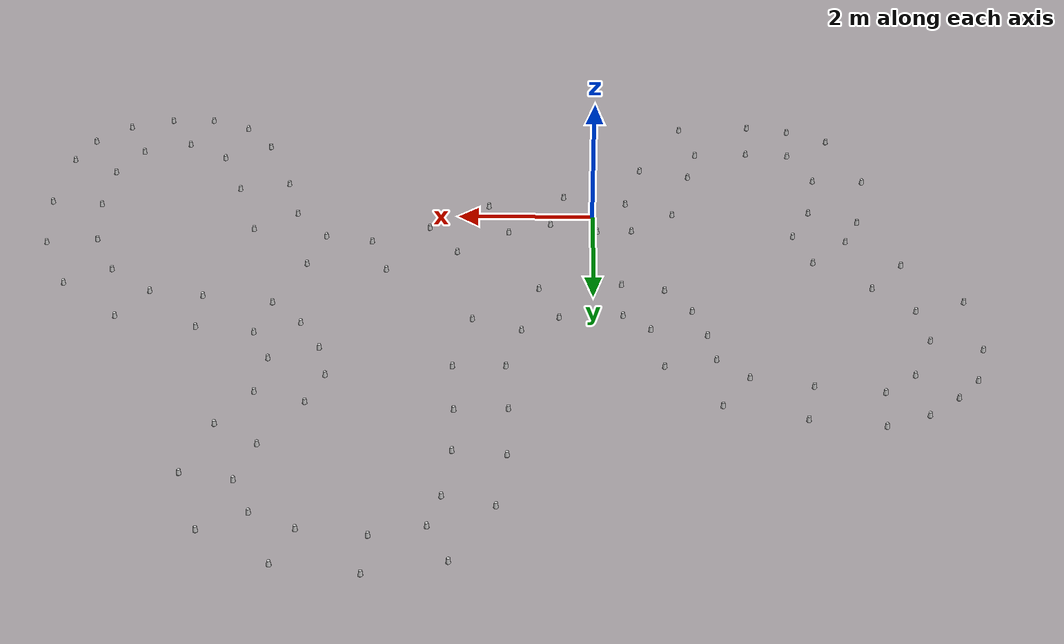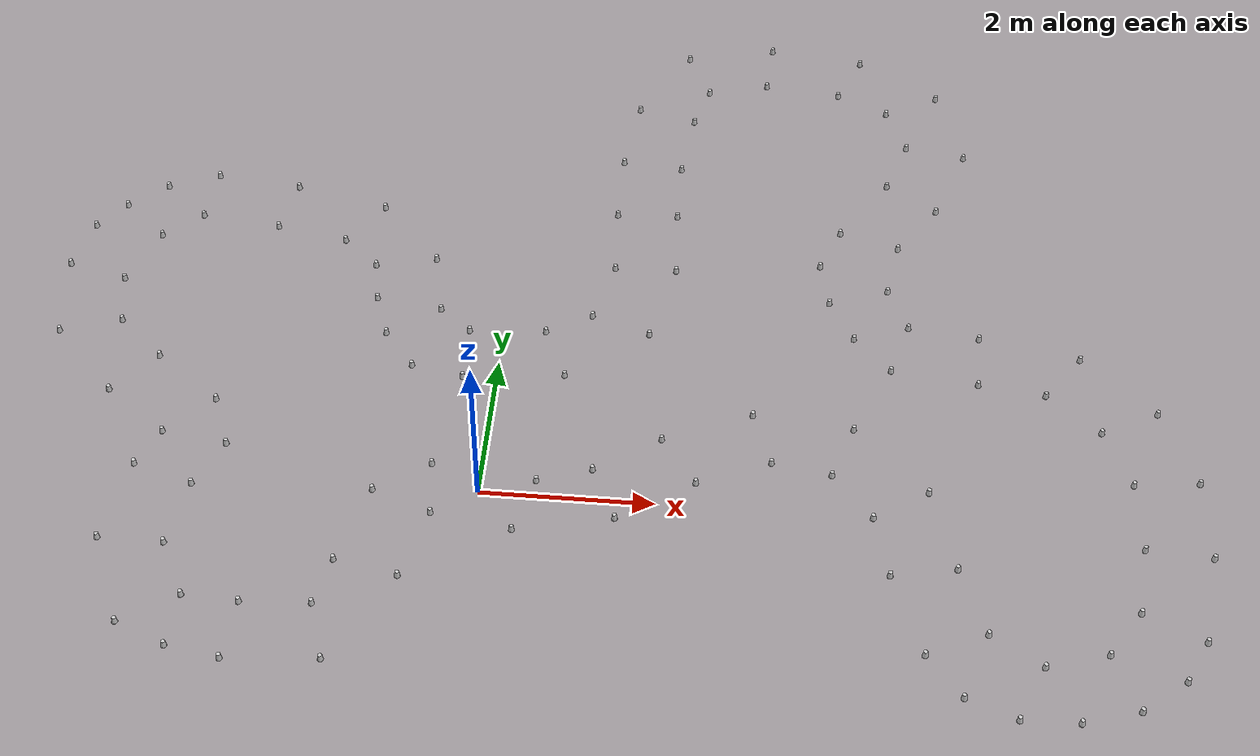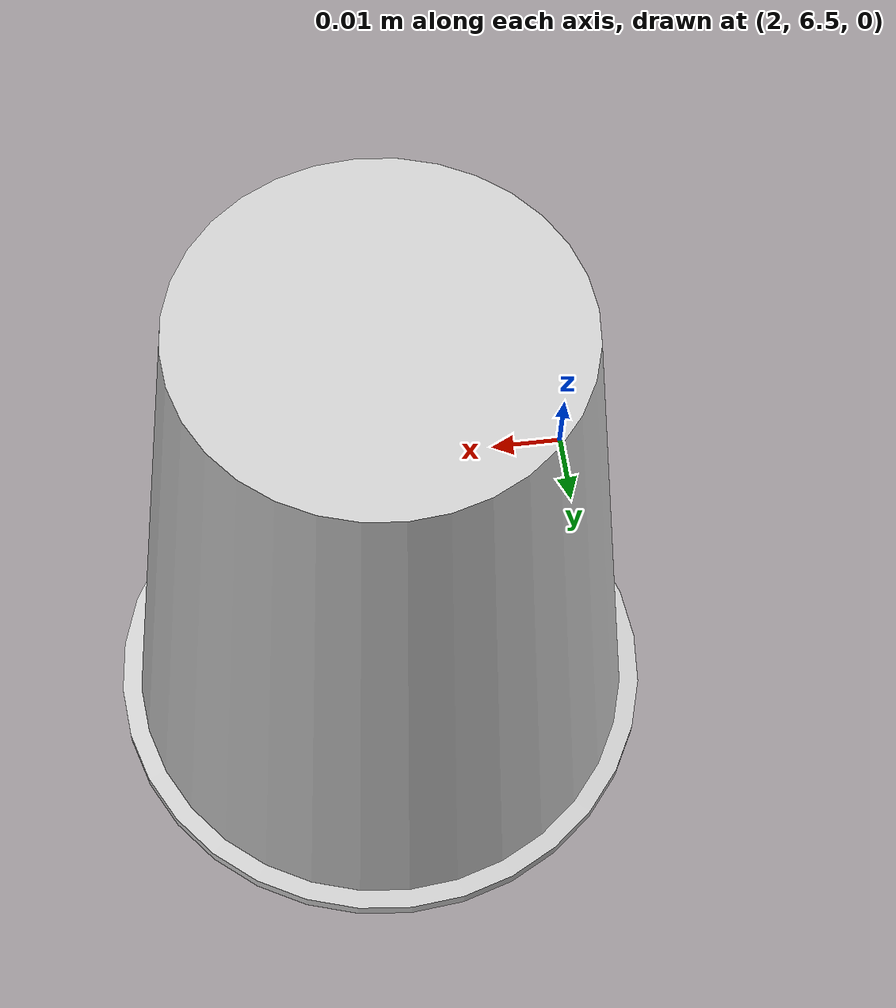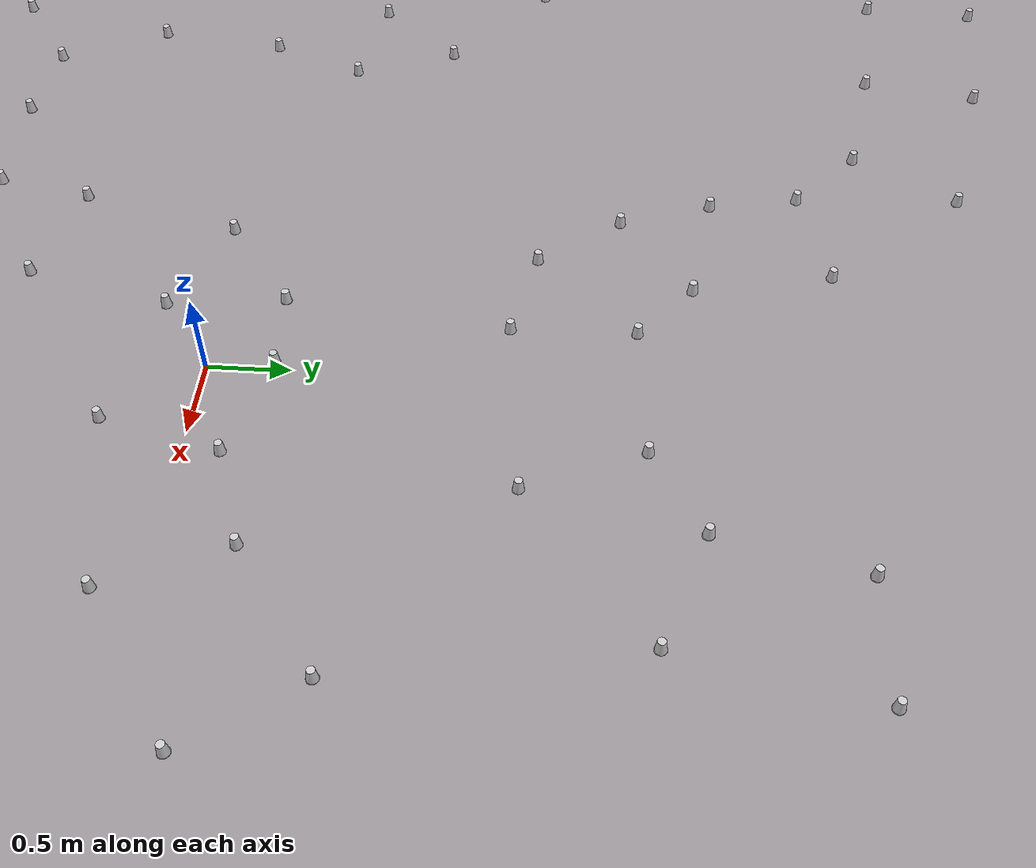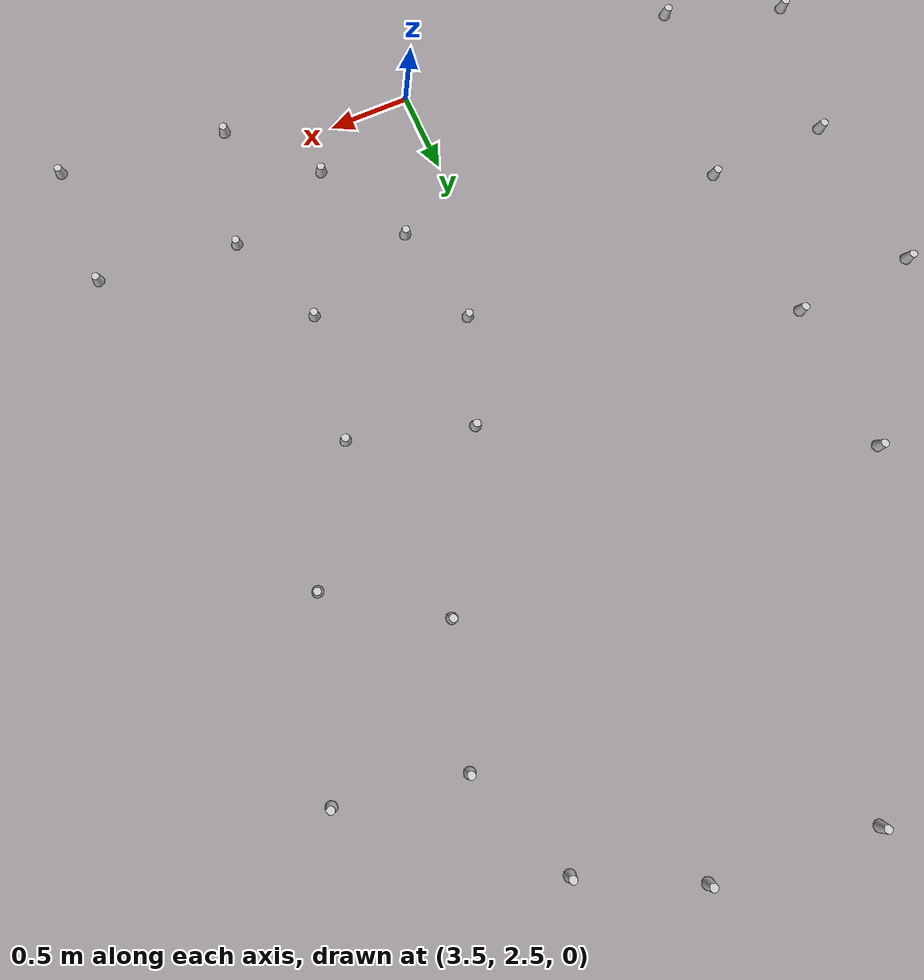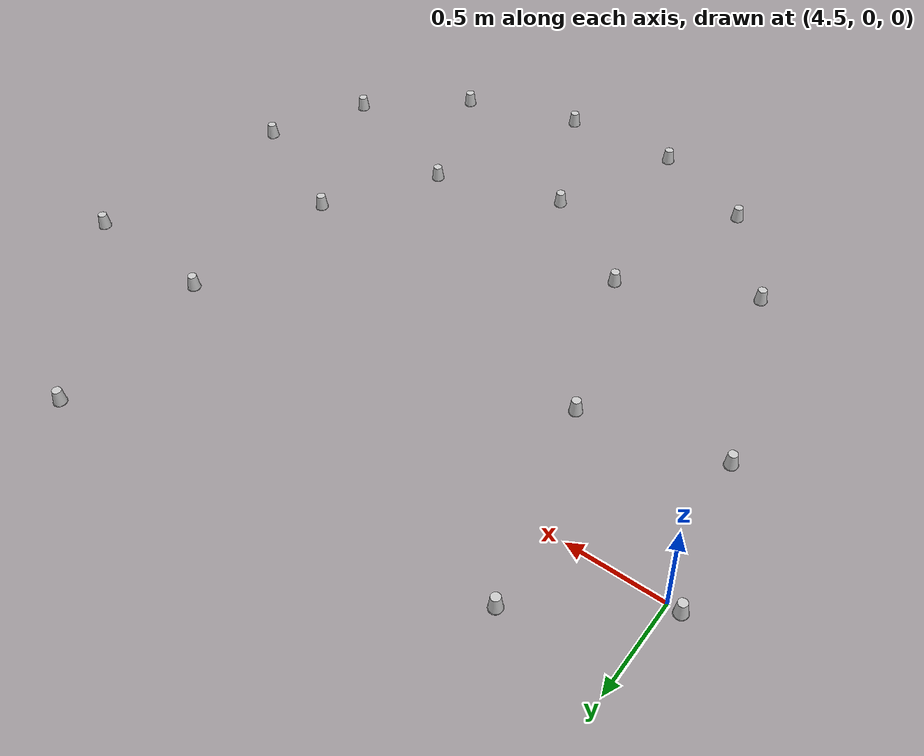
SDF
<?xml version='1.0' encoding='UTF-8'?>
<sdf version="1.4">
  <model name="some track">
    <include>
      <uri>model://cone_yellow</uri>
      <pose>0.44022360225078133 -0.506268748202644 0 0 0 0</pose>
      <name>cone_right_0</name>
    </include>
    <include>
      <uri>model://cone_yellow</uri>
      <pose>1.5638249006412357 -0.24787860087571784 0 0 0 0</pose>
      <name>cone_right_1</name>
    </include>
    <include>
      <uri>model://cone_yellow</uri>
      <pose>2.432876875972533 0.33940764134706214 0 0 0 0</pose>
      <name>cone_right_2</name>
    </include>
    <include>
      <uri>model://cone_yellow</uri>
      <pose>3.2738450334360136 0.7103455340334839 0 0 0 0</pose>
      <name>cone_right_3</name>
    </include>
    <include>
      <uri>model://cone_yellow</uri>
      <pose>3.962163192456555 0.5893240225503815 0 0 0 0</pose>
      <name>cone_right_4</name>
    </include>
    <include>
      <uri>model://cone_yellow</uri>
      <pose>4.434390325784511 0.006780709379471533 0 0 0 0</pose>
      <name>cone_right_5</name>
    </include>
    <include>
      <uri>model://cone_yellow</uri>
      <pose>4.623998057041872 -0.7831051933811569 0 0 0 0</pose>
      <name>cone_right_6</name>
    </include>
    <include>
      <uri>model://cone_yellow</uri>
      <pose>4.9954287138845785 -1.81046904169811 0 0 0 0</pose>
      <name>cone_right_7</name>
    </include>
    <include>
      <uri>model://cone_yellow</uri>
      <pose>5.9608633397634145 -2.546567360918916 0 0 0 0</pose>
      <name>cone_right_8</name>
    </include>
    <include>
      <uri>model://cone_yellow</uri>
      <pose>7.231405791827997 -2.3319774398210185 0 0 0 0</pose>
      <name>cone_right_9</name>
    </include>
    <include>
      <uri>model://cone_yellow</uri>
      <pose>7.987861579705472 -1.3812592368519985 0 0 0 0</pose>
      <name>cone_right_10</name>
    </include>
    <include>
      <uri>model://cone_yellow</uri>
      <pose>8.164930779831423 -0.23812770109658132 0 0 0 0</pose>
      <name>cone_right_11</name>
    </include>
    <include>
      <uri>model://cone_yellow</uri>
      <pose>8.10446732151255 0.8264518806731546 0 0 0 0</pose>
      <name>cone_right_12</name>
    </include>
    <include>
      <uri>model://cone_yellow</uri>
      <pose>7.709126491291107 1.8456443371171358 0 0 0 0</pose>
      <name>cone_right_13</name>
    </include>
    <include>
      <uri>model://cone_yellow</uri>
      <pose>6.857681150757183 2.640413184308524 0 0 0 0</pose>
      <name>cone_right_14</name>
    </include>
    <include>
      <uri>model://cone_yellow</uri>
      <pose>5.672310732669448 2.878166086647049 0 0 0 0</pose>
      <name>cone_right_15</name>
    </include>
    <include>
      <uri>model://cone_yellow</uri>
      <pose>4.830330998092956 2.9877936703514076 0 0 0 0</pose>
      <name>cone_right_16</name>
    </include>
    <include>
      <uri>model://cone_yellow</uri>
      <pose>4.577709678997449 3.589932733546747 0 0 0 0</pose>
      <name>cone_right_17</name>
    </include>
    <include>
      <uri>model://cone_yellow</uri>
      <pose>4.703548267369458 4.352297667450037 0 0 0 0</pose>
      <name>cone_right_18</name>
    </include>
    <include>
      <uri>model://cone_yellow</uri>
      <pose>5.180335067995843 5.073626048158017 0 0 0 0</pose>
      <name>cone_right_19</name>
    </include>
    <include>
      <uri>model://cone_yellow</uri>
      <pose>5.546615119025252 6.126010173656836 0 0 0 0</pose>
      <name>cone_right_20</name>
    </include>
    <include>
      <uri>model://cone_yellow</uri>
      <pose>5.20058670818731 7.280777286199042 0 0 0 0</pose>
      <name>cone_right_21</name>
    </include>
    <include>
      <uri>model://cone_yellow</uri>
      <pose>4.189607968977042 7.92651293234135 0 0 0 0</pose>
      <name>cone_right_22</name>
    </include>
    <include>
      <uri>model://cone_yellow</uri>
      <pose>3.0019878667819917 8.091798913217263 0 0 0 0</pose>
      <name>cone_right_23</name>
    </include>
    <include>
      <uri>model://cone_yellow</uri>
      <pose>1.8901249716676056 7.828387112225913 0 0 0 0</pose>
      <name>cone_right_24</name>
    </include>
    <include>
      <uri>model://cone_yellow</uri>
      <pose>1.3033403300204036 6.717939058053273 0 0 0 0</pose>
      <name>cone_right_25</name>
    </include>
    <include>
      <uri>model://cone_yellow</uri>
      <pose>1.1776930636960374 5.658283814875406 0 0 0 0</pose>
      <name>cone_right_26</name>
    </include>
    <include>
      <uri>model://cone_yellow</uri>
      <pose>1.1800614310643778 4.662023807717361 0 0 0 0</pose>
      <name>cone_right_27</name>
    </include>
    <include>
      <uri>model://cone_yellow</uri>
      <pose>1.230994663643302 3.7018946311634098 0 0 0 0</pose>
      <name>cone_right_28</name>
    </include>
    <include>
      <uri>model://cone_yellow</uri>
      <pose>1.0266395284349543 2.8599570131040757 0 0 0 0</pose>
      <name>cone_right_29</name>
    </include>
    <include>
      <uri>model://cone_yellow</uri>
      <pose>0.49364153150186096 2.547467552979819 0 0 0 0</pose>
      <name>cone_right_30</name>
    </include>
    <include>
      <uri>model://cone_yellow</uri>
      <pose>-0.4218971218835171 2.4827903107448206 0 0 0 0</pose>
      <name>cone_right_31</name>
    </include>
    <include>
      <uri>model://cone_yellow</uri>
      <pose>-0.8141075575688135 2.8128099781926394 0 0 0 0</pose>
      <name>cone_right_32</name>
    </include>
    <include>
      <uri>model://cone_yellow</uri>
      <pose>-0.9906037732024007 3.668037894619511 0 0 0 0</pose>
      <name>cone_right_33</name>
    </include>
    <include>
      <uri>model://cone_yellow</uri>
      <pose>-1.7691628498712177 4.537467176025286 0 0 0 0</pose>
      <name>cone_right_34</name>
    </include>
    <include>
      <uri>model://cone_yellow</uri>
      <pose>-2.928151621371933 4.8195079784098445 0 0 0 0</pose>
      <name>cone_right_35</name>
    </include>
    <include>
      <uri>model://cone_yellow</uri>
      <pose>-3.9827866627626203 4.944188295967893 0 0 0 0</pose>
      <name>cone_right_36</name>
    </include>
    <include>
      <uri>model://cone_yellow</uri>
      <pose>-5.032484312385517 4.29883544817334 0 0 0 0</pose>
      <name>cone_right_37</name>
    </include>
    <include>
      <uri>model://cone_yellow</uri>
      <pose>-5.48700010286994 3.1927664539829683 0 0 0 0</pose>
      <name>cone_right_38</name>
    </include>
    <include>
      <uri>model://cone_yellow</uri>
      <pose>-5.335349967119814 2.0558096908871732 0 0 0 0</pose>
      <name>cone_right_39</name>
    </include>
    <include>
      <uri>model://cone_yellow</uri>
      <pose>-4.51145769506228 1.1663127802409965 0 0 0 0</pose>
      <name>cone_right_40</name>
    </include>
    <include>
      <uri>model://cone_yellow</uri>
      <pose>-3.743251051620798 0.5808473531969959 0 0 0 0</pose>
      <name>cone_right_41</name>
    </include>
    <include>
      <uri>model://cone_yellow</uri>
      <pose>-3.953630320996929 0.06957902164042737 0 0 0 0</pose>
      <name>cone_right_42</name>
    </include>
    <include>
      <uri>model://cone_yellow</uri>
      <pose>-4.111445106015472 -1.0177746424013674 0 0 0 0</pose>
      <name>cone_right_43</name>
    </include>
    <include>
      <uri>model://cone_yellow</uri>
      <pose>-3.6396407622152935 -2.130339454094938 0 0 0 0</pose>
      <name>cone_right_44</name>
    </include>
    <include>
      <uri>model://cone_yellow</uri>
      <pose>-2.4264504900335444 -2.5020536812334395 0 0 0 0</pose>
      <name>cone_right_45</name>
    </include>
    <include>
      <uri>model://cone_yellow</uri>
      <pose>-1.359151129621064 -2.420092175790802 0 0 0 0</pose>
      <name>cone_right_46</name>
    </include>
    <include>
      <uri>model://cone_yellow</uri>
      <pose>-0.7228310931658244 -1.252108179759562 0 0 0 0</pose>
      <name>cone_right_47</name>
    </include>
    <include>
      <uri>model://cone_yellow</uri>
      <pose>-0.49147875080795156 -0.3462652058406587 0 0 0 0</pose>
      <name>cone_right_48</name>
    </include>
    <include>
      <uri>model://cone_yellow</uri>
      <pose>-4.593688602435755 4.689230146988898 0 0 0 0</pose>
      <name>cone_right_49</name>
    </include>
    <include>
      <uri>model://cone_yellow</uri>
      <pose>-5.341399634333193 3.894787175597884 0 0 0 0</pose>
      <name>cone_right_50</name>
    </include>
    <include>
      <uri>model://cone_yellow</uri>
      <pose>6.5986109062789495 -2.5308545047707014 0 0 0 0</pose>
      <name>cone_right_51</name>
    </include>
    <include>
      <uri>model://cone_yellow</uri>
      <pose>5.395263464319015 -2.3205607770495433 0 0 0 0</pose>
      <name>cone_right_52</name>
    </include>
    <include>
      <uri>model://cone_yellow</uri>
      <pose>7.7318604389984955 -1.9116563064806371 0 0 0 0</pose>
      <name>cone_right_53</name>
    </include>
    <include>
      <uri>model://cone_yellow</uri>
      <pose>-3.0456931067106012 -2.3906586862899246 0 0 0 0</pose>
      <name>cone_right_54</name>
    </include>
    <include>
      <uri>model://cone_blue</uri>
      <pose>0.6344418158839107 0.21814776561599897 0 0 0 0</pose>
      <name>cone_left_0</name>
    </include>
    <include>
      <uri>model://cone_blue</uri>
      <pose>1.253789045974456 0.43503996588099253 0 0 0 0</pose>
      <name>cone_left_1</name>
    </include>
    <include>
      <uri>model://cone_blue</uri>
      <pose>2.0043982971385956 0.9549611381939644 0 0 0 0</pose>
      <name>cone_left_2</name>
    </include>
    <include>
      <uri>model://cone_blue</uri>
      <pose>3.028968135154395 1.4192427795408804 0 0 0 0</pose>
      <name>cone_left_3</name>
    </include>
    <include>
      <uri>model://cone_blue</uri>
      <pose>4.1993069675589565 1.3008455119870546 0 0 0 0</pose>
      <name>cone_left_4</name>
    </include>
    <include>
      <uri>model://cone_blue</uri>
      <pose>5.056427906806473 0.42579055150295375 0 0 0 0</pose>
      <name>cone_left_5</name>
    </include>
    <include>
      <uri>model://cone_blue</uri>
      <pose>5.359602772280036 -0.6368666795779226 0 0 0 0</pose>
      <name>cone_left_6</name>
    </include>
    <include>
      <uri>model://cone_blue</uri>
      <pose>5.6717511375671315 -1.4862962803128286 0 0 0 0</pose>
      <name>cone_left_7</name>
    </include>
    <include>
      <uri>model://cone_blue</uri>
      <pose>6.253708737603588 -1.8561026094914221 0 0 0 0</pose>
      <name>cone_left_8</name>
    </include>
    <include>
      <uri>model://cone_blue</uri>
      <pose>6.946395141265067 -1.6382419505560568 0 0 0 0</pose>
      <name>cone_left_9</name>
    </include>
    <include>
      <uri>model://cone_blue</uri>
      <pose>7.311926915137839 -1.0562787309199648 0 0 0 0</pose>
      <name>cone_left_10</name>
    </include>
    <include>
      <uri>model://cone_blue</uri>
      <pose>7.416999329230845 -0.18246312346846133 0 0 0 0</pose>
      <name>cone_left_11</name>
    </include>
    <include>
      <uri>model://cone_blue</uri>
      <pose>7.35951585704573 0.7395765931125357 0 0 0 0</pose>
      <name>cone_left_12</name>
    </include>
    <include>
      <uri>model://cone_blue</uri>
      <pose>7.0449019667471156 1.4973545425576222 0 0 0 0</pose>
      <name>cone_left_13</name>
    </include>
    <include>
      <uri>model://cone_blue</uri>
      <pose>6.428551420283768 2.0253134570903977 0 0 0 0</pose>
      <name>cone_left_14</name>
    </include>
    <include>
      <uri>model://cone_blue</uri>
      <pose>5.646135992900453 2.128622970476921 0 0 0 0</pose>
      <name>cone_left_15</name>
    </include>
    <include>
      <uri>model://cone_blue</uri>
      <pose>4.625045847696766 2.2664352247594715 0 0 0 0</pose>
      <name>cone_left_16</name>
    </include>
    <include>
      <uri>model://cone_blue</uri>
      <pose>3.874444889629176 3.3293206923153447 0 0 0 0</pose>
      <name>cone_left_17</name>
    </include>
    <include>
      <uri>model://cone_blue</uri>
      <pose>3.985363890391307 4.568425408993102 0 0 0 0</pose>
      <name>cone_left_18</name>
    </include>
    <include>
      <uri>model://cone_blue</uri>
      <pose>4.560779389263795 5.496297032436416 0 0 0 0</pose>
      <name>cone_left_19</name>
    </include>
    <include>
      <uri>model://cone_blue</uri>
      <pose>4.808513256479704 6.259072717247412 0 0 0 0</pose>
      <name>cone_left_20</name>
    </include>
    <include>
      <uri>model://cone_blue</uri>
      <pose>4.545002295295855 6.916484714803788 0 0 0 0</pose>
      <name>cone_left_21</name>
    </include>
    <include>
      <uri>model://cone_blue</uri>
      <pose>3.9065667703411178 7.231971587369909 0 0 0 0</pose>
      <name>cone_left_22</name>
    </include>
    <include>
      <uri>model://cone_blue</uri>
      <pose>2.953195414142419 7.343387731736511 0 0 0 0</pose>
      <name>cone_left_23</name>
    </include>
    <include>
      <uri>model://cone_blue</uri>
      <pose>2.1961939445783387 7.143681493860349 0 0 0 0</pose>
      <name>cone_left_24</name>
    </include>
    <include>
      <uri>model://cone_blue</uri>
      <pose>2.0303287084201003 6.533580988873269 0 0 0 0</pose>
      <name>cone_left_25</name>
    </include>
    <include>
      <uri>model://cone_blue</uri>
      <pose>1.92414407224567 5.58540794894411 0 0 0 0</pose>
      <name>cone_left_26</name>
    </include>
    <include>
      <uri>model://cone_blue</uri>
      <pose>1.9292662247100618 4.69655172654152 0 0 0 0</pose>
      <name>cone_left_27</name>
    </include>
    <include>
      <uri>model://cone_blue</uri>
      <pose>1.9807679268658158 3.7203351777025846 0 0 0 0</pose>
      <name>cone_left_28</name>
    </include>
    <include>
      <uri>model://cone_blue</uri>
      <pose>1.7336815469516353 2.6097739120523515 0 0 0 0</pose>
      <name>cone_left_29</name>
    </include>
    <include>
      <uri>model://cone_blue</uri>
      <pose>0.7884207433380785 1.8578261851158993 0 0 0 0</pose>
      <name>cone_left_30</name>
    </include>
    <include>
      <uri>model://cone_blue</uri>
      <pose>-0.4091090072247327 1.7328993425877997 0 0 0 0</pose>
      <name>cone_left_31</name>
    </include>
    <include>
      <uri>model://cone_blue</uri>
      <pose>-1.415865723632611 2.365163790254514 0 0 0 0</pose>
      <name>cone_left_32</name>
    </include>
    <include>
      <uri>model://cone_blue</uri>
      <pose>-1.721433409162101 3.499550378159057 0 0 0 0</pose>
      <name>cone_left_33</name>
    </include>
    <include>
      <uri>model://cone_blue</uri>
      <pose>-2.1695447092680693 3.903279217557199 0 0 0 0</pose>
      <name>cone_left_34</name>
    </include>
    <include>
      <uri>model://cone_blue</uri>
      <pose>-3.053094009784882 4.079988269695014 0 0 0 0</pose>
      <name>cone_left_35</name>
    </include>
    <include>
      <uri>model://cone_blue</uri>
      <pose>-4.030889827014268 4.195732495276244 0 0 0 0</pose>
      <name>cone_left_36</name>
    </include>
    <include>
      <uri>model://cone_blue</uri>
      <pose>-4.476346729209002 3.795634704355741 0 0 0 0</pose>
      <name>cone_left_37</name>
    </include>
    <include>
      <uri>model://cone_blue</uri>
      <pose>-4.7630643366069645 2.9967638868435627 0 0 0 0</pose>
      <name>cone_left_38</name>
    </include>
    <include>
      <uri>model://cone_blue</uri>
      <pose>-4.624371827184902 2.2945775374132307 0 0 0 0</pose>
      <name>cone_left_39</name>
    </include>
    <include>
      <uri>model://cone_blue</uri>
      <pose>-4.0423510617386835 1.7514956290769825 0 0 0 0</pose>
      <name>cone_left_40</name>
    </include>
    <include>
      <uri>model://cone_blue</uri>
      <pose>-3.2268377889565665 1.1247382817336682 0 0 0 0</pose>
      <name>cone_left_41</name>
    </include>
    <include>
      <uri>model://cone_blue</uri>
      <pose>-3.240287715310556 -0.16202911058419006 0 0 0 0</pose>
      <name>cone_left_42</name>
    </include>
    <include>
      <uri>model://cone_blue</uri>
      <pose>-3.361479448712646 -1.0249518888329892 0 0 0 0</pose>
      <name>cone_left_43</name>
    </include>
    <include>
      <uri>model://cone_blue</uri>
      <pose>-3.0141837731575247 -1.7164511178993034 0 0 0 0</pose>
      <name>cone_left_44</name>
    </include>
    <include>
      <uri>model://cone_blue</uri>
      <pose>-2.3740330992685763 -1.753887645419602 0 0 0 0</pose>
      <name>cone_left_45</name>
    </include>
    <include>
      <uri>model://cone_blue</uri>
      <pose>-1.5855760446847664 -1.7050874500453033 0 0 0 0</pose>
      <name>cone_left_46</name>
    </include>
    <include>
      <uri>model://cone_blue</uri>
      <pose>-1.45605126498434 -1.094348300073926 0 0 0 0</pose>
      <name>cone_left_47</name>
    </include>
    <include>
      <uri>model://cone_blue</uri>
      <pose>-1.189928739775561 -0.07301145397044875 0 0 0 0</pose>
      <name>cone_left_48</name>
    </include>
    <include>
      <uri>model://cone_blue</uri>
      <pose>4.180233037485685 2.749854658004935 0 0 0 0</pose>
      <name>cone_left_49</name>
    </include>
    <include>
      <uri>model://cone_blue</uri>
      <pose>-2.9697537050335185 0.45998962281903744 0 0 0 0</pose>
      <name>cone_left_50</name>
    </include>
    <include>
      <uri>model://cone_blue</uri>
      <pose>-0.0606904715575709 0.38989171357865615 0 0 0 0</pose>
      <name>cone_left_51</name>
    </include>
    <include>
      <uri>model://cone_blue</uri>
      <pose>-0.5747418059870526 0.36652574383186476 0 0 0 0</pose>
      <name>cone_left_52</name>
    </include>
    <include>
      <uri>model://cone_blue</uri>
      <pose>3.7479625971699875 3.9532020999648623 0 0 0 0</pose>
      <name>cone_left_53</name>
    </include>
    <include>
      <uri>model://cone_blue</uri>
      <pose>-1.0303782160495487 1.861947807626727 0 0 0 0</pose>
      <name>cone_left_54</name>
    </include>
    <include>
      <uri>model://cone_blue</uri>
      <pose>-1.6145274597194188 2.9367824159792875 0 0 0 0</pose>
      <name>cone_left_55</name>
    </include>
  </model>
</sdf>

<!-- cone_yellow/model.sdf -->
<sdf version='1.4'>
  <model name="cone_yellow">
    <link name="link">
    <collision name="collision"><geometry><box><size> 0.05 0.05 0.01</size>
             </box></geometry></collision>
      <visual name="visual">
        <geometry>
          <mesh>
            <uri>model://cup.dae</uri>
            <scale>1 1 1</scale>
          </mesh>
        </geometry>
        <material>
            <script>
              <uri>model://cone_yellow/materials/scripts</uri>
              <uri>model://cone_yellow/materials/textures</uri>
              <name>cone_yellow/Image</name>
            </script>
        </material>
      </visual>
    </link>
  </model>
</sdf>

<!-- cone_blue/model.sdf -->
<sdf version='1.4'>
  <model name="cone_blue">
    <link name="link">
    <collision name="collision"><geometry><box><size> 0.05 0.05 0.01</size>
             </box></geometry></collision>
      <visual name="visual">
        <geometry>
          <mesh>
            <uri>model://cup.dae</uri>
            <scale>1 1 1</scale>
          </mesh>
        </geometry>
        <material>
            <script>
              <uri>model://cone_blue/materials/scripts</uri>
              <uri>model://cone_blue/materials/textures</uri>
              <name>cone_blue/Image</name>
            </script>
        </material>
      </visual>
    </link>
  </model>
</sdf>
